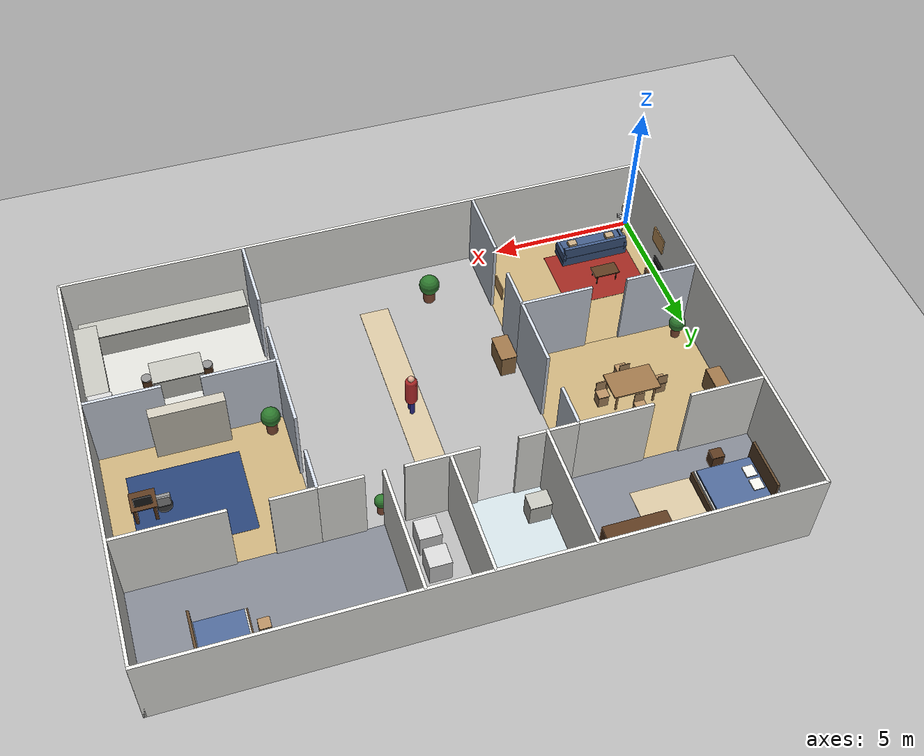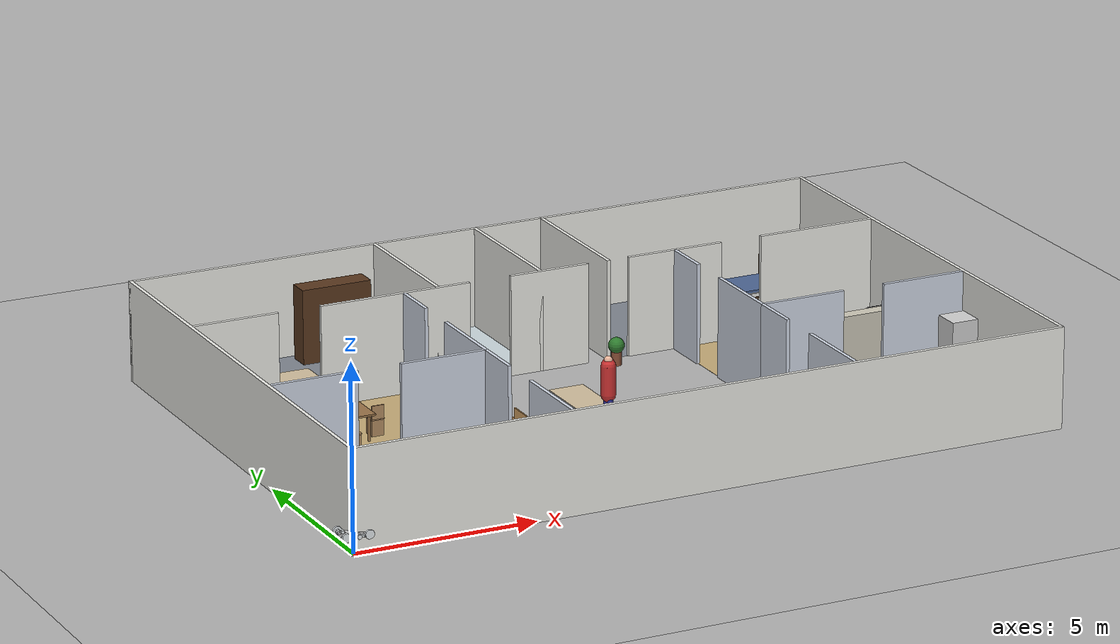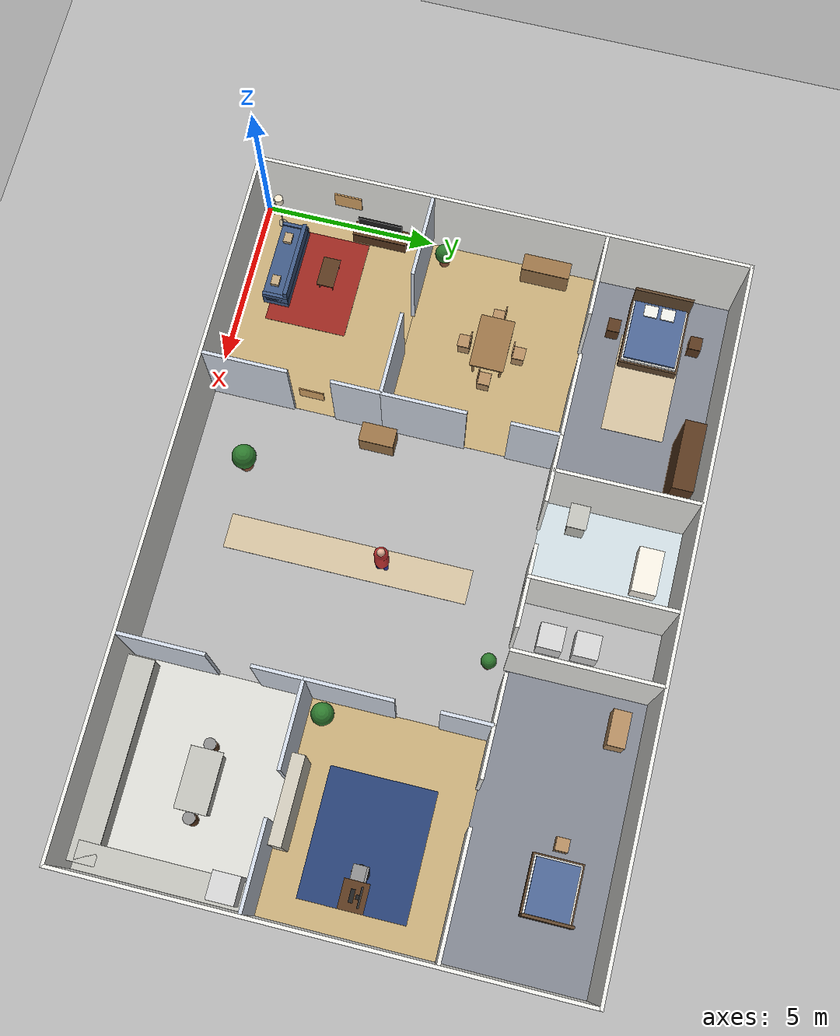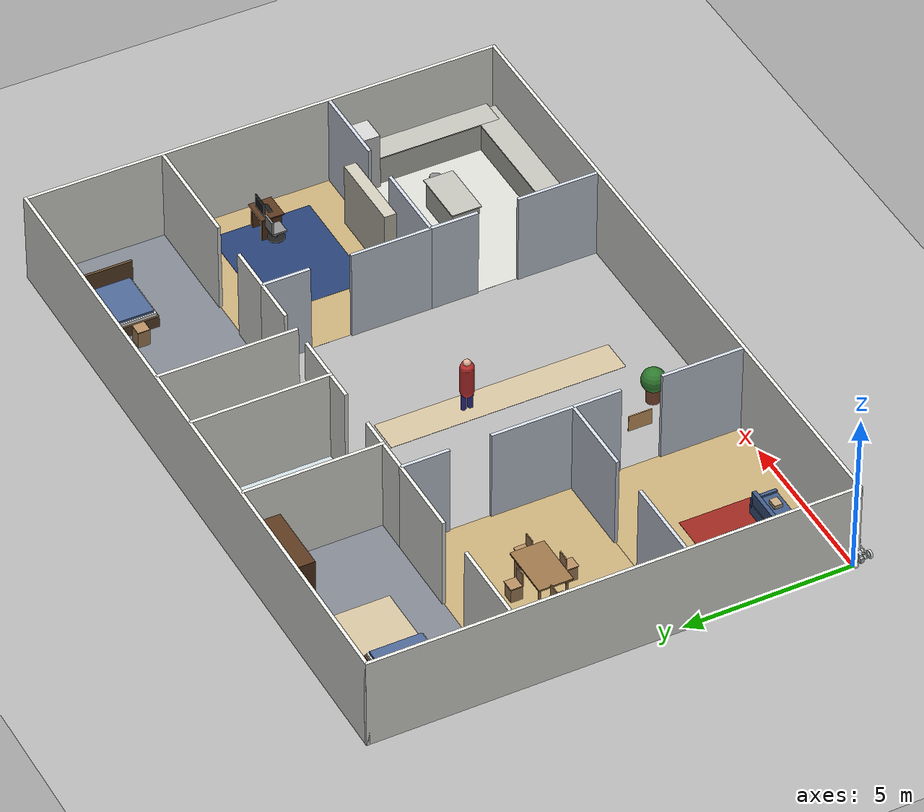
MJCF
<mujoco model="轮足狗机器人v3">
  <compiler angle="radian" meshdir="meshes"/>
  <option timestep="0.001" iterations="50" solver="PGS" gravity="0 0 -9.81">
    <flag frictionloss="enable" sensor="enable"/>
  </option>
  <worldbody>
    <light directional="true" diffuse="0.8 0.8 0.8" specular="0.3 0.3 0.3" pos="0 0 5" dir="0 0 -1" />
    <geom name="ground" type="plane" size="0 0 1" material="grid" condim="4" conaffinity="15" friction="1.0 0.5 0.5"/>
    <body name="trunk" pos="0 0 0.45">
      <joint name="root" type="free" />
      <inertial pos="-0.00111 0.00718 0.07632" mass="18.69147" fullinertia="0.24077 0.63159 0.58481 -0.00158 0.00277 -0.00895" />
      <site name="imu" pos="0 0 0" size="0.01"/>
      <!-- Front camera for person detection -->
      <camera name="front_camera" pos="0.35 0 0.15" xyaxes="0 -1 0 0 0 1" fovy="60"/>
      <geom size="0.205 0.129 0.0775" pos="0 0.00124 0.07541" type="box" rgba="0.752941 0.752941 0.752941 1" />
      <geom size="0.025 0.135 0.07" pos="0.23 0 0.07" type="box" rgba="0.752941 0.752941 0.752941 1" />
      <geom size="0.025 0.135 0.07" pos="-0.23 0 0.07" type="box" rgba="0.752941 0.752941 0.752941 1" />
      <geom size="0.08 0.06 0.072" pos="0.335 0 0.08" type="box" rgba="0.752941 0.752941 0.752941 1" />
      <geom size="0.0825 0.05 0.075" pos="-0.3375 0 0.08" type="box" rgba="0.752941 0.752941 0.752941 1" />
      <geom size="0.0384 0.0384 0.04005" pos="-0.29638 -0.0012453 0.1849" quat="-3.67321e-06 0 0 1" type="box" rgba="0.898039 0.917647 0.929412 1" />
      <body name="fr_hip_Link" pos="0.2395 -0.065 0.08065">
        <inertial pos="0.06964 -0.04836 0.00073" quat="0.625515 0.616922 0.338061 0.337421" mass="1.78126" diaginertia="0.0173549 0.0163714 0.00282375" />
        <joint name="fr_hip_joint" pos="0 0 0" axis="-1 0 0" range="-0.41 0.41"  class="leg_joint_param" actuatorfrcrange="-120 120"/>
        <geom size="0.06 0.024" pos="0.07752 -0.05564 0.00083" quat="0.707105 0.707108 0 0" type="cylinder" rgba="0.898039 0.917647 0.929412 1" />
        <body name="fr_thigh_Link" pos="0.078 -0.0795 0">
          <inertial pos="-0.19519 -0.02855 -0.01131" quat="0.4815 0.451865 0.516848 0.544833" mass="2.40982" diaginertia="0.12237 0.120515 0.00342445" />
          <joint name="fr_thigh_joint" pos="0 0 0" axis="0 1 0" range="-3.14 0"  class="leg_joint_param" actuatorfrcrange="-120 120"/>
          <geom size="0.064 0.015" pos="0 -0.0195 0" quat="0.707105 0.707108 0 0" type="cylinder" rgba="0.898039 0.917647 0.929412 1" />
          <geom size="0.09 0.015 0.03" pos="-0.125 -0.02059 -0.01001" quat="0.997888 0 -0.0649542 0" type="box" rgba="0.898039 0.917647 0.929412 1" />
          <geom size="0.0655 0.028" pos="-0.2485 -0.032 -0.0135" quat="0.707105 0.707108 0 0" type="cylinder" rgba="0.898039 0.917647 0.929412 1" />
          <body name="fr_calf_Link" pos="-0.24954 -0.057 -0.01515">
            <inertial pos="0.17266 -0.02895 0.04224" quat="0.582691 0.473615 0.397387 0.527488" mass="1.89384" diaginertia="0.0857582 0.0849173 0.0023945" />
            <joint name="fr_calf_joint" pos="0 0 0" axis="0 1 0" range="0 3.14"  class="leg_joint_param" actuatorfrcrange="-120 120"/>
            <geom size="0.0635 0.015" pos="0 -0.02653 0" quat="0.707105 0.707108 0 0" type="cylinder" rgba="0.898039 0.917647 0.929412 1" />
            <geom size="0.09 0.02 0.0225" pos="0.14 -0.02903 0.0305" quat="0.991445 0 -0.130526 0" type="box" rgba="0.898039 0.917647 0.929412 1" />
            <geom size="0.06 0.0275" pos="0.249 -0.02903 0.0531" quat="0.707105 0.707108 0 0" type="cylinder" rgba="0.898039 0.917647 0.929412 1" />
            <body name="fr_foot_Link" pos="0.24443 -0.061 0.0525">
              <inertial pos="0.00146 -0.01336 -0.00634" quat="0.713042 -0.0388899 0.00283165 0.700036" mass="0.32377" diaginertia="0.00122196 0.000719831 0.000708212" />
              <joint name="fr_foot_joint" limited="false" pos="0 0 0" axis="0 1 0"  class="leg_joint_param" actuatorfrcrange="-60 60"/>
              <geom size="0.12 0.028085" pos="0 -0.01631 0" quat="0.707105 0.707108 0 0" type="cylinder" rgba="0.898039 0.917647 0.929412 1" />
            </body>
          </body>
        </body>
      </body>
      <body name="fl_hip_Link" pos="0.2395 0.065 0.08065">
        <inertial pos="0.06964 0.04836 -0.00073" quat="0.338061 0.337421 0.625515 0.616922" mass="1.78126" diaginertia="0.0173549 0.0163714 0.00282375" />
        <joint name="fl_hip_joint" pos="0 0 0" axis="-1 0 0" range="-0.41 0.41"  class="leg_joint_param" actuatorfrcrange="-120 120"/>
        <geom size="0.06 0.024" pos="0.07752 0.05564 0.00083" quat="0.707105 0.707108 0 0" type="cylinder" rgba="0.898039 0.917647 0.929412 1" />
        <body name="fl_thigh_Link" pos="0.078 0.0795 0">
          <inertial pos="-0.19484 0.02855 -0.01176" quat="0.542469 0.519007 0.447927 0.48551" mass="2.40982" diaginertia="0.121966 0.120079 0.00347509" />
          <joint name="fl_thigh_joint" pos="0 0 0" axis="0 -1 0" range="0 3.14"  class="leg_joint_param" actuatorfrcrange="-120 120"/>
          <geom size="0.064 0.015" pos="0 0.0195 0" quat="0.707105 0.707108 0 0" type="cylinder" rgba="0.898039 0.917647 0.929412 1" />
          <geom size="0.09 0.015 0.03" pos="-0.125 0.02059 -0.01001" quat="0.997888 0 -0.0649542 0" type="box" rgba="0.898039 0.917647 0.929412 1" />
          <geom size="0.0655 0.028" pos="-0.2485 0.032 -0.0135" quat="0.707105 0.707108 0 0" type="cylinder" rgba="0.898039 0.917647 0.929412 1" />
          <body name="fl_calf_Link" pos="-0.24954 0.057 -0.01515">
            <inertial pos="0.17384 0.02895 0.03735" quat="0.52142 0.405052 0.481468 0.576405" mass="1.89384" diaginertia="0.0858075 0.0849699 0.00239256" />
            <joint name="fl_calf_joint" pos="0 0 0" axis="0 -1 0" range="-3.14 0"  class="leg_joint_param" actuatorfrcrange="-120 120"/>
            <geom size="0.0635 0.015" pos="0 0.02653 0" quat="0.707105 0.707108 0 0" type="cylinder" rgba="0.898039 0.917647 0.929412 1" />
            <geom size="0.09 0.02 0.0225" pos="0.14 0.02903 0.0305" quat="0.991445 0 -0.130526 0" type="box" rgba="0.898039 0.917647 0.929412 1" />
            <geom size="0.06 0.0275" pos="0.249 0.02903 0.0531" quat="0.707105 0.707108 0 0" type="cylinder" rgba="0.898039 0.917647 0.929412 1" />
            <body name="fl_foot_Link" pos="0.24443 0.061 0.0525">
              <inertial pos="0 0.01336 0" quat="0.707107 0 0 0.707107" mass="0.32377" diaginertia="0.00121 0.00071 0.00071" />
              <joint name="fl_foot_joint" limited="false" pos="0 0 0" axis="0 -1 0"  class="leg_joint_param" actuatorfrcrange="-60 60"/>
              <geom size="0.12 0.028085" pos="0 0.01631 0" quat="0.707105 0.707108 0 0" type="cylinder" rgba="0.898039 0.917647 0.929412 1" />
            </body>
          </body>
        </body>
      </body>
      <body name="rr_hip_Link" pos="-0.2395 -0.065 0.08065">
        <inertial pos="-0.06964 -0.04836 -0.00073" quat="0.337421 0.338061 0.616922 0.625515" mass="1.78126" diaginertia="0.0173549 0.0163714 0.00282375" />
        <joint name="rr_hip_joint" pos="0 0 0" axis="1 0 0" range="-0.41 0.41"  class="leg_joint_param" actuatorfrcrange="-120 120"/>
        <geom size="0.06 0.024" pos="-0.07752 -0.05564 0.00083" quat="0.707105 0.707108 0 0" type="cylinder" rgba="0.898039 0.917647 0.929412 1" />
        <body name="rr_thigh_Link" pos="-0.078 -0.0795 0">
          <inertial pos="0.19473 -0.02855 -0.01335" quat="0.51663 0.544751 0.487118 0.446157" mass="2.40982" diaginertia="0.121968 0.12008 0.00347229" />
          <joint name="rr_thigh_joint" pos="0 0 0" axis="0 1 0" range="0 3.14"  class="leg_joint_param" actuatorfrcrange="-120 120"/>
          <geom size="0.064 0.015" pos="0 -0.0195 0" quat="0.707105 0.707108 0 0" type="cylinder" rgba="0.898039 0.917647 0.929412 1" />
          <geom size="0.09 0.015 0.03" pos="0.125 -0.02059 -0.01001" quat="0.997888 0 0.0649542 0" type="box" rgba="0.898039 0.917647 0.929412 1" />
          <geom size="0.0655 0.028" pos="0.2485 -0.032 -0.0135" quat="0.707105 0.707108 0 0" type="cylinder" rgba="0.898039 0.917647 0.929412 1" />
          <body name="rr_calf_Link" pos="0.24954 -0.057 -0.01515">
            <inertial pos="-0.17353 -0.02895 0.03877" quat="0.401946 0.524283 0.577237 0.479963" mass="1.89384" diaginertia="0.0858076 0.0849665 0.00239596" />
            <joint name="rr_calf_joint" pos="0 0 0" axis="0 1 0" range="-6.28 0"  class="leg_joint_param" actuatorfrcrange="-120 120"/>
            <geom size="0.0635 0.015" pos="0 -0.02653 0" quat="0.707105 0.707108 0 0" type="cylinder" rgba="0.898039 0.917647 0.929412 1" />
            <geom size="0.09 0.02 0.0225" pos="-0.14 -0.02903 0.0305" quat="0.991445 0 0.130526 0" type="box" rgba="0.898039 0.917647 0.929412 1" />
            <geom size="0.06 0.0275" pos="-0.249 -0.02903 0.0531" quat="0.707105 0.707108 0 0" type="cylinder" rgba="0.898039 0.917647 0.929412 1" />
            <body name="rr_foot_Link" pos="-0.24443 -0.061 0.0525">
              <inertial pos="0 -0.01336 0" quat="0.707107 0 0 0.707107" mass="0.32377" diaginertia="0.00121 0.00071 0.00071" />
              <joint name="rr_foot_joint" limited="false" pos="0 0 0" axis="0 1 0"  class="leg_joint_param" actuatorfrcrange="-60 60"/>
              <geom size="0.12 0.028085" pos="0 -0.01631 0" quat="0.707105 0.707108 0 0" type="cylinder" rgba="0.898039 0.917647 0.929412 1" />
            </body>
          </body>
        </body>
      </body>
      <body name="rl_hip_Link" pos="-0.2395 0.065 0.08065">
        <inertial pos="-0.0696 0.04836 0.00075" quat="0.616925 0.625523 0.337421 0.338041" mass="1.78126" diaginertia="0.0173387 0.0163514 0.00282991" />
        <joint name="rl_hip_joint" pos="0 0 0" axis="1 0 0" range="-0.41 0.41"  class="leg_joint_param" actuatorfrcrange="-120 120"/>
        <geom size="0.06 0.024" pos="-0.07752 0.05564 0.00083" quat="0.707105 0.707108 0 0" type="cylinder" rgba="0.898039 0.917647 0.929412 1" />
        <body name="rl_thigh_Link" pos="-0.078 0.0795 0">
          <inertial pos="0.19519 0.02855 -0.01131" quat="0.451865 0.4815 0.544833 0.516848" mass="2.40982" diaginertia="0.12237 0.120515 0.00342445" />
          <joint name="rl_thigh_joint" pos="0 0 0" axis="0 -1 0" range="-3.14 0"  class="leg_joint_param" actuatorfrcrange="-120 120"/>
          <geom size="0.064 0.015" pos="0 0.0195 0" quat="0.707105 0.707108 0 0" type="cylinder" rgba="0.898039 0.917647 0.929412 1" />
          <geom size="0.09 0.015 0.03" pos="0.125 0.02059 -0.01001" quat="0.997888 0 0.0649542 0" type="box" rgba="0.898039 0.917647 0.929412 1" />
          <geom size="0.0655 0.028" pos="0.2485 0.032 -0.0135" quat="0.707105 0.707108 0 0" type="cylinder" rgba="0.898039 0.917647 0.929412 1" />
          <body name="rl_calf_Link" pos="0.24954 0.057 -0.01515">
            <inertial pos="-0.17385 0.02895 0.03733" quat="0.478974 0.57966 0.517737 0.408077" mass="1.89384" diaginertia="0.0858096 0.0849658 0.00239458" />
            <joint name="rl_calf_joint" pos="0 0 0" axis="0 -1 0" range="0 6.28"  class="leg_joint_param" actuatorfrcrange="-120 120"/>
            <geom size="0.0635 0.015" pos="0 0.02653 0" quat="0.707105 0.707108 0 0" type="cylinder" rgba="0.898039 0.917647 0.929412 1" />
            <geom size="0.09 0.02 0.0225" pos="-0.14 0.02903 0.0305" quat="0.991445 0 0.130526 0" type="box" rgba="0.898039 0.917647 0.929412 1" />
            <geom size="0.06 0.0275" pos="-0.249 0.02903 0.0531" quat="0.707105 0.707108 0 0" type="cylinder" rgba="0.898039 0.917647 0.929412 1" />
            <body name="rl_foot_Link" pos="-0.24443 0.061 0.0525">
              <inertial pos="0 0.01336 0" quat="0.707107 0 0 0.707107" mass="0.32377" diaginertia="0.00121 0.00071 0.00071" />
              <joint name="rl_foot_joint" limited="false" pos="0 0 0" axis="0 -1 0"  class="leg_joint_param" actuatorfrcrange="-60 60"/>
              <geom size="0.12 0.028085" pos="0 0.01631 0" quat="0.707105 0.707108 0 0" type="cylinder" rgba="0.898039 0.917647 0.929412 1" />
            </body>
          </body>
        </body>
      </body>
    </body>

    <!-- === SCENE === -->

    <!-- ==================== LIGHTING ==================== -->
    <!-- Room lights (one per room) -->
    <light name="light_living" pos="3 2.5 2.7" dir="0 0 -1" diffuse="0.55 0.50 0.42" cutoff="65"/>
    <light name="light_dining" pos="3 7.5 2.7" dir="0 0 -1" diffuse="0.55 0.50 0.42" cutoff="65"/>
    <light name="light_kitchen" pos="17 2.5 2.7" dir="0 0 -1" diffuse="0.60 0.58 0.52" cutoff="65"/>
    <light name="light_study" pos="17 7.5 2.7" dir="0 0 -1" diffuse="0.55 0.52 0.45" cutoff="65"/>
    <light name="light_hall_a" pos="10 3 2.7" dir="0 0 -1" diffuse="0.50 0.48 0.42" cutoff="55"/>
    <light name="light_hall_b" pos="10 7 2.7" dir="0 0 -1" diffuse="0.50 0.48 0.42" cutoff="55"/>
    <light name="light_master" pos="3.5 12 2.7" dir="0 0 -1" diffuse="0.50 0.45 0.38" cutoff="60"/>
    <light name="light_guest" pos="16 12 2.7" dir="0 0 -1" diffuse="0.50 0.45 0.38" cutoff="60"/>
    <light name="light_bath" pos="8.5 12 2.7" dir="0 0 -1" diffuse="0.55 0.55 0.55" cutoff="55"/>
    <!-- Global ambient fill -->
    <light name="sun" pos="10 7 4" dir="0 0 -1" directional="true" diffuse="0.25 0.25 0.25"/>

    <!-- ==================== FLOORS ==================== -->
    <!-- Floor: plane for physics contact (correct collision) + box for mj_ray detection -->
    <geom name="floor" type="plane" pos="10 7 0" size="10.5 7.5 0.05" material="marble_mat"/>
    <geom name="floor_raycast" type="box" pos="10 7 -0.02" size="10.5 7.5 0.01"
          contype="0" conaffinity="0" group="3" rgba="0 0 0 0"/>
    <!-- Ceiling: needed for downward-facing lidar rays -->
    <geom name="ceiling" type="box" pos="10 7 2.85" size="10.5 7.5 0.05" material="wall_mat"
          contype="0" conaffinity="0" group="3"/>

    <!-- Per-room floor overlays (visual only) -->
    <geom name="f_living" type="box" pos="3 2.5 0.001" size="3 2.5 0.001" material="wood_mat" contype="0" conaffinity="0"/>
    <geom name="f_dining" type="box" pos="3 7.5 0.001" size="3 2.5 0.001" material="wood_mat" contype="0" conaffinity="0"/>
    <geom name="f_kitchen" type="box" pos="17 2.5 0.001" size="3 2.5 0.001" material="tile_mat" contype="0" conaffinity="0"/>
    <geom name="f_study" type="box" pos="17 7.5 0.001" size="3 2.5 0.001" material="wood_mat" contype="0" conaffinity="0"/>
    <geom name="f_master" type="box" pos="3.5 12 0.001" size="3.5 2 0.001" material="carpet_mat" contype="0" conaffinity="0"/>
    <geom name="f_guest" type="box" pos="16 12 0.001" size="4 2 0.001" material="carpet_mat" contype="0" conaffinity="0"/>
    <geom name="f_bath" type="box" pos="8.5 12 0.001" size="1.5 2 0.001" material="bath_tile" contype="0" conaffinity="0"/>

    <!-- ==================== EXTERIOR WALLS ==================== -->
    <!-- height=2.8m, thickness=0.1m -->
    <geom name="ew_south" type="box" pos="10 -0.05 1.4" size="10.1 0.05 1.4" material="wall_mat"/>
    <geom name="ew_north" type="box" pos="10 14.05 1.4" size="10.1 0.05 1.4" material="wall_mat"/>
    <geom name="ew_west" type="box" pos="-0.05 7 1.4" size="0.05 7.1 1.4" material="wall_mat"/>
    <geom name="ew_east" type="box" pos="20.05 7 1.4" size="0.05 7.1 1.4" material="wall_mat"/>

    <!-- ==================== INTERIOR WALLS ==================== -->

    <!-- LEFT WALL (x=6): Living/Dining ↔ Central Hall -->
    <!-- y=0 to y=2.4 -->
    <geom name="iw_l1" type="box" pos="6 1.2 1.4" size="0.05 1.2 1.4" material="accent_wall"/>
    <!-- y=3.6 to y=5 (gap at 2.4..3.6 = door to Living) -->
    <geom name="iw_l2" type="box" pos="6 4.3 1.4" size="0.05 0.7 1.4" material="accent_wall"/>
    <!-- y=5 to y=7.4 -->
    <geom name="iw_l3" type="box" pos="6 6.2 1.4" size="0.05 1.2 1.4" material="accent_wall"/>
    <!-- y=8.6 to y=10 (gap at 7.4..8.6 = door to Dining) -->
    <geom name="iw_l4" type="box" pos="6 9.3 1.4" size="0.05 0.7 1.4" material="accent_wall"/>

    <!-- RIGHT WALL (x=14): Central Hall ↔ Kitchen/Study -->
    <!-- y=0 to y=2.4 -->
    <geom name="iw_r1" type="box" pos="14 1.2 1.4" size="0.05 1.2 1.4" material="accent_wall"/>
    <!-- y=3.6 to y=5 (gap at 2.4..3.6 = door to Kitchen) -->
    <geom name="iw_r2" type="box" pos="14 4.3 1.4" size="0.05 0.7 1.4" material="accent_wall"/>
    <!-- y=5 to y=7.4 -->
    <geom name="iw_r3" type="box" pos="14 6.2 1.4" size="0.05 1.2 1.4" material="accent_wall"/>
    <!-- y=8.6 to y=10 (gap at 7.4..8.6 = door to Study) -->
    <geom name="iw_r4" type="box" pos="14 9.3 1.4" size="0.05 0.7 1.4" material="accent_wall"/>

    <!-- LIVING/DINING DIVIDER (y=5, x=0..6): door at x=2.4..3.6 -->
    <geom name="iw_ld1" type="box" pos="1.2 5 1.4" size="1.2 0.05 1.4" material="accent_wall"/>
    <geom name="iw_ld2" type="box" pos="4.8 5 1.4" size="1.2 0.05 1.4" material="accent_wall"/>

    <!-- KITCHEN/STUDY DIVIDER (y=5, x=14..20): door at x=16.4..17.6 -->
    <geom name="iw_ks1" type="box" pos="15.2 5 1.4" size="1.2 0.05 1.4" material="accent_wall"/>
    <geom name="iw_ks2" type="box" pos="18.8 5 1.4" size="1.2 0.05 1.4" material="accent_wall"/>

    <!-- BEDROOM WALL (y=10, full width): doors at multiple points -->
    <!-- x=0 to x=2.4 -->
    <geom name="iw_b1" type="box" pos="1.2 10 1.4" size="1.2 0.05 1.4" material="wall_mat"/>
    <!-- x=3.6 to x=6 (gap = door to Master BR) -->
    <geom name="iw_b2" type="box" pos="4.8 10 1.4" size="1.2 0.05 1.4" material="wall_mat"/>
    <!-- x=6 to x=7.9 -->
    <geom name="iw_b3" type="box" pos="6.95 10 1.4" size="0.95 0.05 1.4" material="wall_mat"/>
    <!-- x=9.1 to x=11.4 (gap at 7.9..9.1 = door to Bathroom) -->
    <geom name="iw_b4" type="box" pos="10.25 10 1.4" size="1.15 0.05 1.4" material="wall_mat"/>
    <!-- x=12.6 to x=14 (gap at 11.4..12.6 = door to Guest BR) -->
    <geom name="iw_b5" type="box" pos="13.3 10 1.4" size="0.7 0.05 1.4" material="wall_mat"/>
    <!-- x=14 to x=15.4 -->
    <geom name="iw_b6" type="box" pos="14.7 10 1.4" size="0.7 0.05 1.4" material="wall_mat"/>
    <!-- x=16.6 to x=20 (gap at 15.4..16.6 = another door to Guest) -->
    <geom name="iw_b7" type="box" pos="18.3 10 1.4" size="1.7 0.05 1.4" material="wall_mat"/>

    <!-- BATHROOM walls (x=7, x=10, y=10..14) -->
    <geom name="iw_bath_w" type="box" pos="7 12 1.4" size="0.05 2.05 1.4" material="wall_mat"/>
    <geom name="iw_bath_e" type="box" pos="10 12 1.4" size="0.05 2.05 1.4" material="wall_mat"/>

    <!-- LAUNDRY nook (x=10..12, y=10..14) — open niche, just east wall -->
    <geom name="iw_laund_e" type="box" pos="12 12 1.4" size="0.05 2.05 1.4" material="wall_mat"/>

    <!-- ==================== LIVING ROOM (x=0..6, y=0..5) ==================== -->

    <!-- L-sofa against south-west -->
    <body name="sofa_main" pos="1.8 1.0 0">
      <geom type="box" pos="0 0 0.18" size="1.2 0.38 0.18" material="sofa_blue"/>
      <geom type="box" pos="0 -0.08 0.42" size="1.15 0.30 0.06" material="sofa_blue"/>
      <geom type="box" pos="0 0.30 0.48" size="1.15 0.06 0.28" material="sofa_blue"/>
      <geom type="box" pos="-1.15 0 0.38" size="0.05 0.38 0.16" material="sofa_blue"/>
      <geom type="box" pos="1.15 0 0.38" size="0.05 0.38 0.16" material="sofa_blue"/>
      <!-- Throw pillows -->
      <geom type="box" pos="-0.7 -0.1 0.52" size="0.15 0.12 0.08" material="cushion_mat"/>
      <geom type="box" pos="0.7 -0.1 0.52" size="0.15 0.12 0.08" material="cushion_mat"/>
    </body>

    <!-- Coffee table -->
    <body name="coffee_tbl" pos="1.8 2.3 0">
      <geom type="cylinder" pos="-0.35 -0.2 0.18" size="0.02 0.18" material="dark_wood"/>
      <geom type="cylinder" pos="0.35 -0.2 0.18" size="0.02 0.18" material="dark_wood"/>
      <geom type="cylinder" pos="-0.35 0.2 0.18" size="0.02 0.18" material="dark_wood"/>
      <geom type="cylinder" pos="0.35 0.2 0.18" size="0.02 0.18" material="dark_wood"/>
      <geom type="box" pos="0 0 0.37" size="0.45 0.25 0.02" material="dark_wood"/>
    </body>

    <!-- TV + media console against west wall -->
    <body name="tv_console" pos="0.25 3.5 0">
      <geom type="box" pos="0 0 0.22" size="0.22 0.8 0.22" material="dark_wood"/>
      <geom type="box" pos="0 0 0.45" size="0.22 0.8 0.01" material="dark_wood"/>
      <geom name="tv" type="box" pos="0.02 0 0.78" size="0.025 0.65 0.4" material="black_mat"/>
    </body>

    <!-- Floor lamp -->
    <body name="lamp_living" pos="0.4 0.5 0">
      <geom type="cylinder" pos="0 0 0.02" size="0.12 0.02" material="lamp_base"/>
      <geom type="cylinder" pos="0 0 0.7" size="0.015 0.68" material="lamp_base"/>
      <geom type="cylinder" pos="0 0 1.38" size="0.12 0.12" material="lamp_shade" contype="0" conaffinity="0"/>
    </body>

    <!-- Rug -->
    <geom name="rug_living" type="box" pos="2.0 2.0 0.004" size="1.5 1.2 0.004"
          material="rug_red" contype="0" conaffinity="0"/>

    <!-- Wall art -->
    <geom name="art_living" type="box" pos="0.02 2.5 1.5" size="0.02 0.4 0.3"
          material="painting_mat" contype="0" conaffinity="0"/>

    <!-- ==================== DINING ROOM (x=0..6, y=5..10) ==================== -->

    <!-- Dining table (large, 8-seater) -->
    <body name="dining_table" pos="3 7.5 0">
      <geom type="cylinder" pos="-0.65 -0.4 0.36" size="0.035 0.36" material="oak_mat"/>
      <geom type="cylinder" pos="0.65 -0.4 0.36" size="0.035 0.36" material="oak_mat"/>
      <geom type="cylinder" pos="-0.65 0.4 0.36" size="0.035 0.36" material="oak_mat"/>
      <geom type="cylinder" pos="0.65 0.4 0.36" size="0.035 0.36" material="oak_mat"/>
      <geom type="box" pos="0 0 0.73" size="0.8 0.5 0.025" material="oak_mat"/>
    </body>

    <!-- 4 dining chairs -->
    <body name="dchair1" pos="2.0 7.5 0">
      <geom type="box" pos="0 0 0.23" size="0.17 0.17 0.23" material="light_wood" contype="0" conaffinity="0"/>
      <geom type="box" pos="0 0 0.46" size="0.19 0.19 0.015" material="light_wood"/>
      <geom type="box" pos="0 0.17 0.66" size="0.17 0.015 0.19" material="light_wood"/>
    </body>
    <body name="dchair2" pos="4.0 7.5 0">
      <geom type="box" pos="0 0 0.23" size="0.17 0.17 0.23" material="light_wood" contype="0" conaffinity="0"/>
      <geom type="box" pos="0 0 0.46" size="0.19 0.19 0.015" material="light_wood"/>
      <geom type="box" pos="0 -0.17 0.66" size="0.17 0.015 0.19" material="light_wood"/>
    </body>
    <body name="dchair3" pos="3.0 6.7 0">
      <geom type="box" pos="0 0 0.23" size="0.17 0.17 0.23" material="light_wood" contype="0" conaffinity="0"/>
      <geom type="box" pos="0 0 0.46" size="0.19 0.19 0.015" material="light_wood"/>
      <geom type="box" pos="0 0.17 0.66" size="0.17 0.015 0.19" material="light_wood"/>
    </body>
    <body name="dchair4" pos="3.0 8.3 0">
      <geom type="box" pos="0 0 0.23" size="0.17 0.17 0.23" material="light_wood" contype="0" conaffinity="0"/>
      <geom type="box" pos="0 0 0.46" size="0.19 0.19 0.015" material="light_wood"/>
      <geom type="box" pos="0 -0.17 0.66" size="0.17 0.015 0.19" material="light_wood"/>
    </body>

    <!-- Sideboard / buffet against west wall -->
    <body name="sideboard" pos="0.3 8.5 0">
      <geom type="box" pos="0 0 0.4" size="0.25 0.7 0.4" material="oak_mat"/>
      <geom type="box" pos="0 0 0.81" size="0.25 0.7 0.01" material="oak_mat"/>
    </body>

    <!-- Plant in dining corner -->
    <body name="plant_dining" pos="0.5 5.5 0">
      <geom type="cylinder" pos="0 0 0.22" size="0.15 0.22" material="plant_pot"/>
      <geom type="sphere" pos="0 0 0.58" size="0.28" material="plant_leaf" contype="0" conaffinity="0"/>
    </body>

    <!-- ==================== KITCHEN (x=14..20, y=0..5) ==================== -->

    <!-- L-shaped counter (along east + south walls) -->
    <body name="counter_east" pos="19.6 2.5 0">
      <geom type="box" pos="0 0 0.44" size="0.35 2.3 0.44" material="counter_mat"/>
      <geom type="box" pos="0 0 0.90" size="0.38 2.3 0.015" material="counter_mat"/>
    </body>
    <body name="counter_south" pos="17 0.4 0">
      <geom type="box" pos="0 0 0.44" size="2.8 0.35 0.44" material="counter_mat"/>
      <geom type="box" pos="0 0 0.90" size="2.8 0.38 0.015" material="counter_mat"/>
    </body>

    <!-- Kitchen island -->
    <body name="island" pos="17 2.8 0">
      <geom type="box" pos="0 0 0.44" size="0.8 0.4 0.44" material="counter_mat"/>
      <geom type="box" pos="0 0 0.90" size="0.85 0.45 0.015" material="counter_mat"/>
    </body>

    <!-- Fridge (tall, against east wall near north) -->
    <body name="fridge" pos="19.5 4.3 0">
      <geom type="box" pos="0 0 0.9" size="0.38 0.38 0.9" material="steel_mat"/>
    </body>

    <!-- Bar stools at island -->
    <body name="stool1" pos="16.0 2.8 0">
      <geom type="cylinder" pos="0 0 0.35" size="0.16 0.35" material="dark_wood"/>
      <geom type="cylinder" pos="0 0 0.73" size="0.17 0.03" material="sofa_grey"/>
    </body>
    <body name="stool2" pos="18.0 2.8 0">
      <geom type="cylinder" pos="0 0 0.35" size="0.16 0.35" material="dark_wood"/>
      <geom type="cylinder" pos="0 0 0.73" size="0.17 0.03" material="sofa_grey"/>
    </body>

    <!-- ==================== STUDY (x=14..20, y=5..10) ==================== -->

    <!-- L-desk against east wall -->
    <body name="desk" pos="19.2 7.5 0">
      <geom type="box" pos="0 0 0.36" size="0.05 0.3 0.36" material="dark_wood"/>
      <geom type="box" pos="-0.6 0 0.36" size="0.05 0.3 0.36" material="dark_wood"/>
      <geom type="box" pos="-0.3 0 0.73" size="0.4 0.35 0.02" material="dark_wood"/>
      <!-- Monitor -->
      <geom type="box" pos="-0.3 0.18 0.95" size="0.28 0.02 0.20" material="black_mat"/>
      <geom type="box" pos="-0.3 0.12 0.78" size="0.06 0.06 0.04" material="black_mat"/>
      <!-- Keyboard -->
      <geom type="box" pos="-0.3 -0.05 0.76" size="0.18 0.06 0.01" material="black_mat"
            contype="0" conaffinity="0"/>
    </body>

    <!-- Desk chair (on wheels) -->
    <body name="desk_chair" pos="18.3 7.5 0">
      <geom type="cylinder" pos="0 0 0.22" size="0.25 0.02" material="black_mat"/>
      <geom type="cylinder" pos="0 0 0.35" size="0.04 0.12" material="black_mat"/>
      <geom type="box" pos="0 0 0.50" size="0.22 0.22 0.03" material="sofa_grey"/>
      <geom type="box" pos="0 0.20 0.72" size="0.20 0.03 0.20" material="sofa_grey"/>
    </body>

    <!-- Large bookshelf (against south wall of study) -->
    <body name="bookshelf" pos="17 5.3 0">
      <geom type="box" pos="0 0 1.0" size="1.2 0.18 1.0" material="shelf_mat"/>
      <geom type="box" pos="0 0 0.45" size="1.18 0.16 0.01" material="shelf_mat"/>
      <geom type="box" pos="0 0 0.90" size="1.18 0.16 0.01" material="shelf_mat"/>
      <geom type="box" pos="0 0 1.35" size="1.18 0.16 0.01" material="shelf_mat"/>
      <geom type="box" pos="0 0 1.80" size="1.18 0.16 0.01" material="shelf_mat"/>
    </body>

    <!-- Study rug -->
    <geom name="rug_study" type="box" pos="17.5 7.5 0.004" size="1.8 1.5 0.004"
          material="rug_blue" contype="0" conaffinity="0"/>

    <!-- Plant in study -->
    <body name="plant_study" pos="14.5 5.5 0">
      <geom type="cylinder" pos="0 0 0.3" size="0.18 0.3" material="plant_pot"/>
      <geom type="sphere" pos="0 0 0.72" size="0.32" material="plant_leaf" contype="0" conaffinity="0"/>
    </body>

    <!-- ==================== MASTER BEDROOM (x=0..7, y=10..14) ==================== -->

    <!-- Bed (king size, against west wall) -->
    <body name="master_bed" pos="1.5 12 0">
      <geom type="box" pos="0 0 0.18" size="1.0 0.85 0.18" material="bed_frame"/>
      <geom type="box" pos="0 0 0.40" size="0.95 0.80 0.06" material="bed_white"/>
      <geom type="box" pos="0 0 0.50" size="0.90 0.75 0.04" material="bed_blue"/>
      <geom type="box" pos="-0.65 -0.25 0.50" size="0.18 0.20 0.08" material="bed_white"/>
      <geom type="box" pos="-0.65 0.25 0.50" size="0.18 0.20 0.08" material="bed_white"/>
      <!-- Headboard -->
      <geom type="box" pos="-0.96 0 0.7" size="0.04 0.85 0.48" material="bed_frame"/>
    </body>

    <!-- Nightstands -->
    <body name="nightstand_l" pos="1.5 10.8 0">
      <geom type="box" pos="0 0 0.25" size="0.2 0.18 0.25" material="dark_wood"/>
      <geom type="box" pos="0 0 0.51" size="0.2 0.18 0.01" material="dark_wood"/>
    </body>
    <body name="nightstand_r" pos="1.5 13.2 0">
      <geom type="box" pos="0 0 0.25" size="0.2 0.18 0.25" material="dark_wood"/>
      <geom type="box" pos="0 0 0.51" size="0.2 0.18 0.01" material="dark_wood"/>
    </body>

    <!-- Wardrobe -->
    <body name="wardrobe" pos="5.5 13.5 0">
      <geom type="box" pos="0 0 1.05" size="1.0 0.3 1.05" material="dark_wood"/>
    </body>

    <!-- Bedroom rug -->
    <geom name="rug_master" type="box" pos="3 12 0.004" size="1.5 0.9 0.004"
          material="rug_beige" contype="0" conaffinity="0"/>

    <!-- ==================== GUEST BEDROOM (x=12..20, y=10..14) ==================== -->

    <!-- Bed -->
    <body name="guest_bed" pos="17.5 12.5 0">
      <geom type="box" pos="0 0 0.18" size="0.85 0.7 0.18" material="bed_frame"/>
      <geom type="box" pos="0 0 0.40" size="0.80 0.65 0.06" material="bed_white"/>
      <geom type="box" pos="0 0 0.50" size="0.75 0.60 0.04" material="bed_blue"/>
      <geom type="box" pos="0.81 0 0.65" size="0.04 0.70 0.42" material="bed_frame"/>
    </body>

    <!-- Guest nightstand -->
    <body name="guest_nightstand" pos="16.3 12.5 0">
      <geom type="box" pos="0 0 0.25" size="0.18 0.18 0.25" material="light_wood"/>
      <geom type="box" pos="0 0 0.51" size="0.18 0.18 0.01" material="light_wood"/>
    </body>

    <!-- Guest dresser -->
    <body name="dresser" pos="13 13.3 0">
      <geom type="box" pos="0 0 0.4" size="0.5 0.25 0.4" material="light_wood"/>
      <geom type="box" pos="0 0 0.81" size="0.5 0.25 0.01" material="light_wood"/>
    </body>

    <!-- ==================== BATHROOM (x=7..10, y=10..14) ==================== -->

    <!-- Bathtub (against north wall) -->
    <body name="bathtub" pos="8.5 13.2 0">
      <geom type="box" pos="0 0 0.30" size="0.65 0.35 0.30" material="ceramic_mat"/>
    </body>

    <!-- Sink vanity -->
    <body name="vanity" pos="7.5 11 0">
      <geom type="box" pos="0 0 0.40" size="0.35 0.25 0.40" material="counter_mat"/>
      <geom type="box" pos="0 0 0.81" size="0.35 0.28 0.01" material="counter_mat"/>
    </body>

    <!-- ==================== LAUNDRY NOOK (x=10..12, y=10..14) ==================== -->

    <!-- Washer -->
    <body name="washer" pos="11 11 0">
      <geom type="box" pos="0 0 0.42" size="0.35 0.35 0.42" material="steel_mat"/>
    </body>
    <!-- Dryer -->
    <body name="dryer" pos="11 12 0">
      <geom type="box" pos="0 0 0.42" size="0.35 0.35 0.42" material="steel_mat"/>
    </body>

    <!-- ==================== CENTRAL HALLWAY DECOR ==================== -->

    <!-- Console table against left wall of hallway -->
    <body name="console_table" pos="6.5 5 0">
      <geom type="box" pos="0 0 0.40" size="0.25 0.5 0.40" material="oak_mat"/>
      <geom type="box" pos="0 0 0.81" size="0.28 0.5 0.01" material="oak_mat"/>
    </body>

    <!-- Large potted plant near entry -->
    <body name="plant_entry" pos="8 1.5 0">
      <geom type="cylinder" pos="0 0 0.28" size="0.2 0.28" material="plant_pot"/>
      <geom type="sphere" pos="0 0 0.72" size="0.35" material="plant_leaf" contype="0" conaffinity="0"/>
    </body>

    <!-- Hallway runner rug -->
    <geom name="rug_hall" type="box" pos="10 5 0.004" size="0.5 3.5 0.004"
          material="rug_beige" contype="0" conaffinity="0"/>

    <!-- Hall plant near bedroom doors -->
    <body name="plant_hall" pos="12 9.5 0">
      <geom type="cylinder" pos="0 0 0.22" size="0.14 0.22" material="plant_pot"/>
      <geom type="sphere" pos="0 0 0.55" size="0.22" material="plant_leaf" contype="0" conaffinity="0"/>
    </body>

    <!-- Wall art in hallway -->
    <geom name="art_hall1" type="box" pos="6.02 3 1.5" size="0.015 0.35 0.25"
          material="painting_mat" contype="0" conaffinity="0"/>
    <geom name="art_hall2" type="box" pos="13.98 6.5 1.5" size="0.015 0.4 0.3"
          material="painting_mat" contype="0" conaffinity="0"/>

    <!-- === PERSON === -->
    <body name="person" pos="10.0 6.0 0.0" mocap="true">
  <!-- Torso: red capsule -->
  <geom name="person_torso" type="capsule" size="0.2 0.4"
        pos="0 0 1.0" rgba="0.8 0.2 0.2 1.0"
        contype="0" conaffinity="0" group="1"/>
  <!-- Head: skin-colored sphere -->
  <geom name="person_head" type="sphere" size="0.12"
        pos="0 0 1.55" rgba="0.9 0.7 0.6 1.0"
        contype="0" conaffinity="0" group="1"/>
  <!-- Left leg -->
  <geom name="person_leg_l" type="capsule" size="0.08 0.4"
        pos="0 0.1 0.4" rgba="0.2 0.2 0.6 1.0"
        contype="0" conaffinity="0" group="1"/>
  <!-- Right leg -->
  <geom name="person_leg_r" type="capsule" size="0.08 0.4"
        pos="0 -0.1 0.4" rgba="0.2 0.2 0.6 1.0"
        contype="0" conaffinity="0" group="1"/>
</body>

  </worldbody>
  <visual>
    <global offwidth="1280" offheight="720" />
  </visual>
  <default>
    <joint limited="true"/>
    <motor ctrllimited="true"/>
    <geom condim="4" contype="1" conaffinity="15" solref="0.001 2" friction="0.9 0.2 0.2"/>
    <equality solref="0.001 2"/>
    <default class="leg_joint_param">
      <joint damping="0.01" frictionloss="0.01" armature="0.01"/>
    </default>
  </default>
  <asset>
    <texture type="skybox" builtin="gradient" rgb1="0.3 0.5 0.7" rgb2="0.0 0.0 0.0" width="512" height="512" />
    <texture name="grid" type="2d" builtin="checker" rgb1="0.8 0.8 0.8" rgb2="0.6 0.6 0.6" width="256" height="256" />
    <material name="grid" texture="grid" texrepeat="8 8" reflectance="0.1" />

    <texture type="skybox" builtin="gradient" rgb1="0.88 0.90 0.95" rgb2="0.65 0.70 0.80"
             width="512" height="3072"/>

    <!-- Floor textures -->
    <texture type="2d" name="wood_tex" builtin="checker"
             rgb1="0.82 0.72 0.52" rgb2="0.72 0.62 0.42" width="200" height="200"/>
    <texture type="2d" name="tile_tex" builtin="checker"
             rgb1="0.90 0.90 0.88" rgb2="0.80 0.80 0.78" width="150" height="150"/>
    <texture type="2d" name="carpet_tex" builtin="flat"
             rgb1="0.50 0.52 0.56" rgb2="0.45 0.47 0.51" width="100" height="100"/>
    <texture type="2d" name="marble_tex" builtin="checker"
             rgb1="0.92 0.90 0.85" rgb2="0.85 0.82 0.77" width="120" height="120"/>
    <texture type="2d" name="bath_tex" builtin="checker"
             rgb1="0.85 0.90 0.92" rgb2="0.75 0.80 0.82" width="80" height="80"/>

    <material name="wood_mat" texture="wood_tex" texuniform="true" texrepeat="6 6" reflectance="0.12"/>
    <material name="tile_mat" texture="tile_tex" texuniform="true" texrepeat="8 8" reflectance="0.25"/>
    <material name="carpet_mat" texture="carpet_tex" texuniform="true" texrepeat="3 3" reflectance="0.02"/>
    <material name="marble_mat" texture="marble_tex" texuniform="true" texrepeat="10 12" reflectance="0.2"/>
    <material name="bath_tile" texture="bath_tex" texuniform="true" texrepeat="6 6" reflectance="0.3"/>

    <material name="wall_mat" rgba="0.93 0.93 0.91 1" reflectance="0.04"/>
    <material name="accent_wall" rgba="0.82 0.85 0.90 1" reflectance="0.04"/>

    <!-- Furniture -->
    <material name="dark_wood" rgba="0.35 0.22 0.12 1" reflectance="0.12"/>
    <material name="light_wood" rgba="0.70 0.55 0.38 1" reflectance="0.10"/>
    <material name="oak_mat" rgba="0.60 0.45 0.28 1" reflectance="0.10"/>
    <material name="sofa_blue" rgba="0.25 0.35 0.52 1" reflectance="0.04"/>
    <material name="sofa_grey" rgba="0.55 0.55 0.55 1" reflectance="0.04"/>
    <material name="cushion_mat" rgba="0.75 0.65 0.50 1" reflectance="0.03"/>
    <material name="bed_white" rgba="0.92 0.92 0.90 1" reflectance="0.03"/>
    <material name="bed_blue" rgba="0.30 0.40 0.58 1" reflectance="0.03"/>
    <material name="bed_frame" rgba="0.38 0.28 0.18 1" reflectance="0.08"/>
    <material name="counter_mat" rgba="0.75 0.75 0.72 1" reflectance="0.25"/>
    <material name="steel_mat" rgba="0.82 0.82 0.82 1" reflectance="0.40"/>
    <material name="black_mat" rgba="0.12 0.12 0.12 1" reflectance="0.50"/>
    <material name="shelf_mat" rgba="0.80 0.78 0.72 1" reflectance="0.10"/>
    <material name="ceramic_mat" rgba="0.95 0.93 0.88 1" reflectance="0.20"/>
    <material name="plant_pot" rgba="0.55 0.32 0.22 1" reflectance="0.05"/>
    <material name="plant_leaf" rgba="0.18 0.48 0.18 1" reflectance="0.03"/>
    <material name="rug_red" rgba="0.60 0.15 0.12 1" reflectance="0.02"/>
    <material name="rug_blue" rgba="0.15 0.25 0.45 1" reflectance="0.02"/>
    <material name="rug_beige" rgba="0.82 0.75 0.62 1" reflectance="0.02"/>
    <material name="lamp_shade" rgba="0.95 0.90 0.80 1" reflectance="0.01"/>
    <material name="lamp_base" rgba="0.70 0.65 0.55 1" reflectance="0.15"/>
    <material name="painting_mat" rgba="0.85 0.65 0.40 1" reflectance="0.05"/>

  </asset>
  <!-- IMU 传感器 -->
  <sensor>
    <framequat name="orientation" objtype="site" objname="imu"/>
    <gyro name="angular-velocity" site="imu"/>
  </sensor>

  <!-- Torque actuators: PD 在 Python 侧计算，和 Isaac Lab 训练一致 -->
  <!-- Dart 布局: [FR(h,t,c), FL(h,t,c), RR(h,t,c), RL(h,t,c), feet(4)] = 12+4 -->
  <actuator>
    <motor joint="fr_hip_joint"   name="fr_hip"   gear="1" ctrllimited="true" ctrlrange="-120 120"/>
    <motor joint="fr_thigh_joint" name="fr_thigh" gear="1" ctrllimited="true" ctrlrange="-120 120"/>
    <motor joint="fr_calf_joint"  name="fr_calf"  gear="1" ctrllimited="true" ctrlrange="-120 120"/>
    <motor joint="fl_hip_joint"   name="fl_hip"   gear="1" ctrllimited="true" ctrlrange="-120 120"/>
    <motor joint="fl_thigh_joint" name="fl_thigh" gear="1" ctrllimited="true" ctrlrange="-120 120"/>
    <motor joint="fl_calf_joint"  name="fl_calf"  gear="1" ctrllimited="true" ctrlrange="-120 120"/>
    <motor joint="rr_hip_joint"   name="rr_hip"   gear="1" ctrllimited="true" ctrlrange="-120 120"/>
    <motor joint="rr_thigh_joint" name="rr_thigh" gear="1" ctrllimited="true" ctrlrange="-120 120"/>
    <motor joint="rr_calf_joint"  name="rr_calf"  gear="1" ctrllimited="true" ctrlrange="-120 120"/>
    <motor joint="rl_hip_joint"   name="rl_hip"   gear="1" ctrllimited="true" ctrlrange="-120 120"/>
    <motor joint="rl_thigh_joint" name="rl_thigh" gear="1" ctrllimited="true" ctrlrange="-120 120"/>
    <motor joint="rl_calf_joint"  name="rl_calf"  gear="1" ctrllimited="true" ctrlrange="-120 120"/>
    <motor joint="fr_foot_joint"  name="fr_foot"  gear="1" ctrllimited="true" ctrlrange="-60 60"/>
    <motor joint="fl_foot_joint"  name="fl_foot"  gear="1" ctrllimited="true" ctrlrange="-60 60"/>
    <motor joint="rr_foot_joint"  name="rr_foot"  gear="1" ctrllimited="true" ctrlrange="-60 60"/>
    <motor joint="rl_foot_joint"  name="rl_foot"  gear="1" ctrllimited="true" ctrlrange="-60 60"/>
  </actuator>
</mujoco>
